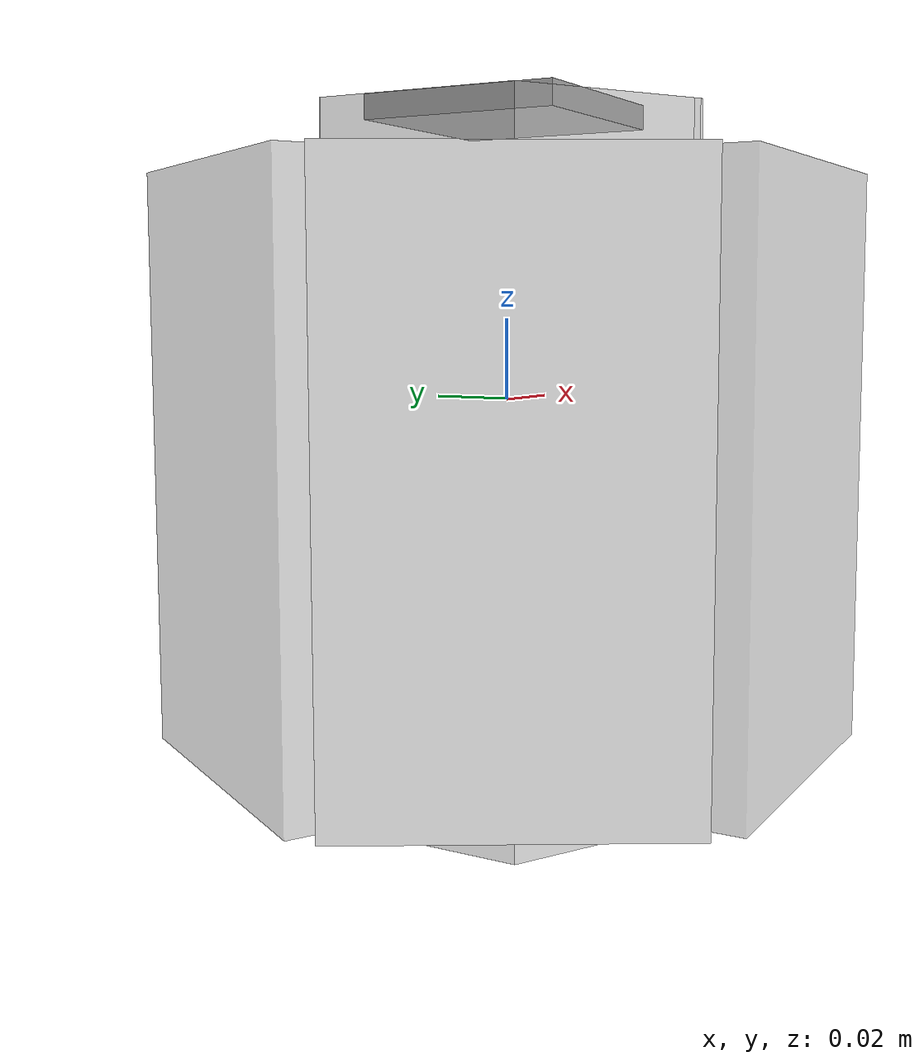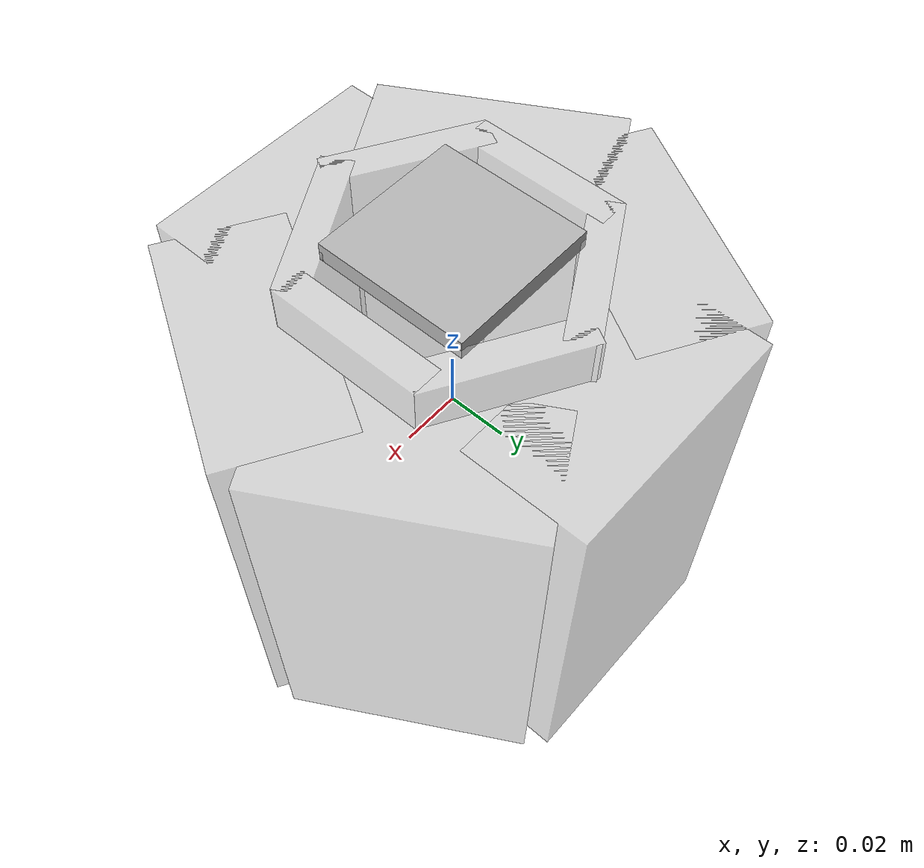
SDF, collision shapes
<?xml version="1.0" ?>
<sdf version="1.5">
  <model name="jar_hollow_markers">
    <link name="link">
      <gravity>true</gravity>
      <inertial>
        <pose>0 0 0 0 0 0</pose>
        <mass>0.1</mass>
        <inertia>
          <ixx>0.00040</ixx>
          <ixy>0</ixy>
          <ixz>0</ixz>
          <iyy>0.00040</iyy>
          <iyz>0</iyz>
          <izz>0.00012</izz>
        </inertia>
      </inertial>

      <collision name="side1">
        <pose>0.037581 0 -0.015 0 0 0</pose>
        <geometry>
          <box><size>0.01 0.05 0.17</size></box>
        </geometry>
        <surface>
          <friction><ode><mu>1.0</mu><mu2>1.0</mu2></ode></friction>
          <contact><ode><kp>10000000.0</kp><kd>1.0</kd><min_depth>0.001</min_depth><max_vel>0.1</max_vel></ode></contact>
        </surface>
      </collision>
      <collision name="side2">
        <pose>-0.037581 0 -0.015 0 0 0</pose>
        <geometry>
          <box><size>0.01 0.05 0.17</size></box>
        </geometry>
        <surface>
          <friction><ode><mu>1.0</mu><mu2>1.0</mu2></ode></friction>
          <contact><ode><kp>10000000.0</kp><kd>1.0</kd><min_depth>0.001</min_depth><max_vel>0.1</max_vel></ode></contact>
        </surface>
      </collision>
      <collision name="side3">
        <pose>0.018437 -0.033383 -0.015 0 0 -1.047166667</pose>
        <geometry>
          <box><size>0.01 0.05 0.17</size></box>
        </geometry>
        <surface>
          <friction><ode><mu>1.0</mu><mu2>1.0</mu2></ode></friction>
          <contact><ode><kp>10000000.0</kp><kd>1.0</kd><min_depth>0.001</min_depth><max_vel>0.1</max_vel></ode></contact>
        </surface>
      </collision>
      <collision name="side4">
        <pose>-0.018437 0.033383 -0.015 0 0 -1.047166667</pose>
        <geometry>
          <box><size>0.01 0.05 0.17</size></box>
        </geometry>
        <surface>
          <friction><ode><mu>1.0</mu><mu2>1.0</mu2></ode></friction>
          <contact><ode><kp>10000000.0</kp><kd>1.0</kd><min_depth>0.001</min_depth><max_vel>0.1</max_vel></ode></contact>
        </surface>
      </collision>
      <collision name="side5">
        <pose>-0.018437 -0.033383 -0.015 0 0 1.047166667</pose>
        <geometry>
          <box><size>0.01 0.05 0.17</size></box>
        </geometry>
        <surface>
          <friction><ode><mu>1.0</mu><mu2>1.0</mu2></ode></friction>
          <contact><ode><kp>10000000.0</kp><kd>1.0</kd><min_depth>0.001</min_depth><max_vel>0.1</max_vel></ode></contact>
        </surface>
      </collision>
      <collision name="side6">
        <pose>0.018437 0.033383 -0.015 0 0 1.047166667</pose>
        <geometry>
          <box><size>0.01 0.05 0.17</size></box>
        </geometry>
        <surface>
          <friction><ode><mu>1.0</mu><mu2>1.0</mu2></ode></friction>
          <contact><ode><kp>10000000.0</kp><kd>1.0</kd><min_depth>0.001</min_depth><max_vel>0.1</max_vel></ode></contact>
        </surface>
      </collision>
      <collision name="bottom">
        <pose>0 0 -0.09 0 0 0</pose>
        <geometry>
          <box><size>0.06 0.06 0.02</size></box>
        </geometry>
        <surface>
          <friction><ode><mu>1.0</mu><mu2>1.0</mu2></ode></friction>
          <contact><ode><kp>10000000.0</kp><kd>1.0</kd><min_depth>0.001</min_depth><max_vel>0.1</max_vel></ode></contact>
        </surface>
      </collision>

      <visual name="side1">
        <pose>0.037581 0 -0.015 0 0 0</pose>
        <geometry>
          <box><size>0.01 0.05 0.17</size></box>
        </geometry>
        <material>
          <diffuse>0.7 0.7 0.7 0.5</diffuse>
        </material>
      </visual>
      <visual name="side2">
        <pose>-0.037581 0 -0.015 0 0 0</pose>
        <geometry>
          <box><size>0.01 0.05 0.17</size></box>
        </geometry>
        <material>
          <diffuse>0.7 0.7 0.7 0.5</diffuse>
        </material>
      </visual>
      <visual name="side3">
        <pose>0.018437 -0.033383 -0.015 0 0 -1.047166667</pose>
        <geometry>
          <box><size>0.01 0.05 0.17</size></box>
        </geometry>
        <material>
          <diffuse>0.7 0.7 0.7 0.5</diffuse>
        </material>
      </visual>
      <visual name="side4">
        <pose>-0.018437 0.033383 -0.015 0 0 -1.047166667</pose>
        <geometry>
          <box><size>0.01 0.05 0.17</size></box>
        </geometry>
        <material>
          <diffuse>0.7 0.7 0.7 0.5</diffuse>
        </material>
      </visual>
      <visual name="side5">
        <pose>-0.018437 -0.033383 -0.015 0 0 1.047166667</pose>
        <geometry>
          <box><size>0.01 0.05 0.17</size></box>
        </geometry>
        <material>
          <diffuse>0.7 0.7 0.7 0.5</diffuse>
        </material>
      </visual>
      <visual name="side6">
        <pose>0.018437 0.033383 -0.015 0 0 1.047166667</pose>
        <geometry>
          <box><size>0.01 0.05 0.17</size></box>
        </geometry>
        <material>
          <diffuse>0.7 0.7 0.7 0.5</diffuse>
        </material>
      </visual>
      <visual name="bottom">
        <pose>0 0 -0.09 0 0 0</pose>
        <geometry>
          <box><size>0.06 0.06 0.02</size></box>
        </geometry>
        <material>
          <diffuse>0.7 0.7 0.7 0.5</diffuse>
        </material>
      </visual>

      <collision name='marker_10'>
        <pose frame=''>0 -0.0577 -0.015 1.570796327 0 0</pose>
        <geometry>
          <box>
            <size>0.08 0.14 0.04</size>
          </box>
        </geometry>
        <surface>
          <friction>
            <ode>
              <mu>1.0</mu>
              <mu2>1.0</mu2>
            </ode>
          </friction>
          <contact>
            <ode>
              <kp>10000000.0</kp>
              <kd>1.0</kd>
              <min_depth>0.001</min_depth>
              <max_vel>0.1</max_vel>
            </ode>
          </contact>
        </surface>
      </collision>

      <collision name='marker_15'>
        <pose frame=''>-0.0484 -0.0275 -0.015 1.570796327 0 -1.047197551</pose>
        <geometry>
          <box>
            <size>0.08 0.14 0.04</size>
          </box>
        </geometry>
        <surface>
          <friction>
            <ode>
              <mu>1.0</mu>
              <mu2>1.0</mu2>
            </ode>
          </friction>
          <contact>
            <ode>
              <kp>10000000.0</kp>
              <kd>1.0</kd>
              <min_depth>0.001</min_depth>
              <max_vel>0.1</max_vel>
            </ode>
          </contact>
        </surface>
      </collision>

      <collision name='marker_14'>
        <pose frame=''>-0.0493 0.0289 -0.015 1.570796327 0 -2.094395103</pose>
        <geometry>
          <box>
            <size>0.08 0.14 0.04</size>
          </box>
        </geometry>
        <surface>
          <friction>
            <ode>
              <mu>1.0</mu>
              <mu2>1.0</mu2>
            </ode>
          </friction>
          <contact>
            <ode>
              <kp>10000000.0</kp>
              <kd>1.0</kd>
              <min_depth>0.001</min_depth>
              <max_vel>0.1</max_vel>
            </ode>
          </contact>
        </surface>
      </collision>

      <collision name='marker_13'>
        <pose frame=''>0 0.0577 -0.015 1.570796327 0 3.141592654</pose>
        <geometry>
          <box>
            <size>0.08 0.14 0.04</size>
          </box>
        </geometry>
        <surface>
          <friction>
            <ode>
              <mu>1.0</mu>
              <mu2>1.0</mu2>
            </ode>
          </friction>
          <contact>
            <ode>
              <kp>10000000.0</kp>
              <kd>1.0</kd>
              <min_depth>0.001</min_depth>
              <max_vel>0.1</max_vel>
            </ode>
          </contact>
        </surface>
      </collision>

      <collision name='marker_12'>
        <pose frame=''>0.0484 0.0275 -0.015 1.570796327 0 2.094395103</pose>
        <geometry>
          <box>
            <size>0.08 0.14 0.04</size>
          </box>
        </geometry>
        <surface>
          <friction>
            <ode>
              <mu>1.0</mu>
              <mu2>1.0</mu2>
            </ode>
          </friction>
          <contact>
            <ode>
              <kp>10000000.0</kp>
              <kd>1.0</kd>
              <min_depth>0.001</min_depth>
              <max_vel>0.1</max_vel>
            </ode>
          </contact>
        </surface>
      </collision>

      <collision name='marker_11'>
        <pose frame=''>0.0493 -0.0289 -0.015 1.570796327 0 1.047197551</pose>
        <geometry>
          <box>
            <size>0.08 0.14 0.04</size>
          </box>
        </geometry>
        <surface>
          <friction>
            <ode>
              <mu>1.0</mu>
              <mu2>1.0</mu2>
            </ode>
          </friction>
          <contact>
            <ode>
              <kp>10000000.0</kp>
              <kd>1.0</kd>
              <min_depth>0.001</min_depth>
              <max_vel>0.1</max_vel>
            </ode>
          </contact>
        </surface>
      </collision>

      <visual name='marker_10'>
        <pose frame=''>0 -0.0775 -0.015 1.570796327 0 0</pose>
        <geometry>
          <mesh>
            <uri>model://ar_marker_8cm_10/meshes/ar_marker_8cm.dae</uri>
          </mesh>
        </geometry>
      </visual>

      <visual name='marker_15'>
        <pose frame=''>-0.0668 -0.0393 -0.015 1.570796327 0 -1.047197551</pose>
        <geometry>
          <mesh>
            <uri>model://ar_marker_8cm_15/meshes/ar_marker_8cm.dae</uri>
          </mesh>
        </geometry>
      </visual>

      <visual name='marker_14'>
        <pose frame=''>-0.0668 0.038 -0.015 1.570796327 0 -2.094395103</pose>
        <geometry>
          <mesh>
            <uri>model://ar_marker_8cm_14/meshes/ar_marker_8cm.dae</uri>
          </mesh>
        </geometry>
      </visual>

      <visual name='marker_13'>
        <pose frame=''>0 0.0775 -0.015 1.570796327 0 3.141592654</pose>
        <geometry>
          <mesh>
            <uri>model://ar_marker_8cm_13/meshes/ar_marker_8cm.dae</uri>
          </mesh>
        </geometry>
      </visual>

      <visual name='marker_12'>
        <pose frame=''>0.0668 0.0393 -0.015 1.570796327 0 2.094395103</pose>
        <geometry>
          <mesh>
            <uri>model://ar_marker_8cm_12/meshes/ar_marker_8cm.dae</uri>
          </mesh>
        </geometry>
      </visual>

      <visual name='marker_11'>
        <pose frame=''>0.0668 -0.038 -0.015 1.570796327 0 1.047197551</pose>
        <geometry>
          <mesh>
            <uri>model://ar_marker_8cm_11/meshes/ar_marker_8cm.dae</uri>
          </mesh>
        </geometry>
      </visual>

      <visual name='under_marker_10'>
        <pose frame=''>0 -0.0577 -0.015 1.570796327 0 0</pose>
        <geometry>
          <box>
            <size>0.08 0.14 0.04</size>
          </box>
        </geometry>
      </visual>

      <visual name='under_marker_15'>
        <pose frame=''>-0.0484 -0.0275 -0.015 1.570796327 0 -1.047197551</pose>
        <geometry>
          <box>
            <size>0.08 0.14 0.04</size>
          </box>
        </geometry>
      </visual>

      <visual name='under_marker_14'>
        <pose frame=''>-0.0493 0.0289 -0.015 1.570796327 0 -2.094395103</pose>
        <geometry>
          <box>
            <size>0.08 0.14 0.04</size>
          </box>
        </geometry>
      </visual>

      <visual name='under_marker_13'>
        <pose frame=''>0 0.0577 -0.015 1.570796327 0 3.141592654</pose>
        <geometry>
          <box>
            <size>0.08 0.14 0.04</size>
          </box>
        </geometry>
      </visual>

      <visual name='under_marker_12'>
        <pose frame=''>0.0484 0.0275 -0.015 1.570796327 0 2.094395103</pose>
        <geometry>
          <box>
            <size>0.08 0.14 0.04</size>
          </box>
        </geometry>
      </visual>

      <visual name='under_marker_11'>
        <pose frame=''>0.0493 -0.0289 -0.015 1.570796327 0 1.047197551</pose>
        <geometry>
          <box>
            <size>0.08 0.14 0.04</size>
          </box>
        </geometry>
      </visual>

    </link>

    <joint name="cap_hinge" type="revolute">
      <parent>link</parent>
      <child>hidden_cap</child>
      <axis>
        <xyz>1 0 0</xyz>
        <limit>
          <lower>-1.57</lower>
          <upper>0</upper>
        </limit>
        <dynamics>
          <friction>1</friction>
        </dynamics>
      </axis>
      <pose>0 -0.035 0.07 0 0 0</pose>
    </joint>

    <link name="hidden_cap">
      <gravity>false</gravity>
      <inertial>
        <pose frame=''>0 0 0.07 0 0 0</pose>
        <mass>0.02</mass>
        <inertia>
          <ixx>0.00015</ixx>
          <ixy>0</ixy>
          <ixz>0</ixz>
          <iyy>0.00015</iyy>
          <iyz>0</iyz>
          <izz>0.00003</izz>
        </inertia>
      </inertial>
      <collision name="collision1">
        <pose frame=''>0 0 0.07 0 0 0</pose>
        <geometry>
          <box>
            <size>0.05 0.05 0.006</size>
          </box>
        </geometry>
        <surface>
          <friction>
            <ode>
              <mu>1.0</mu>
              <mu2>1.0</mu2>
            </ode>
          </friction>
          <contact>
            <ode>
              <kp>10000000.0</kp>
              <kd>1.0</kd>
              <min_depth>0.001</min_depth>
              <max_vel>0.1</max_vel>
            </ode>
          </contact>
        </surface>
      </collision>
      <!-- This link should not be visible -->
    </link>

  </model>
</sdf>
